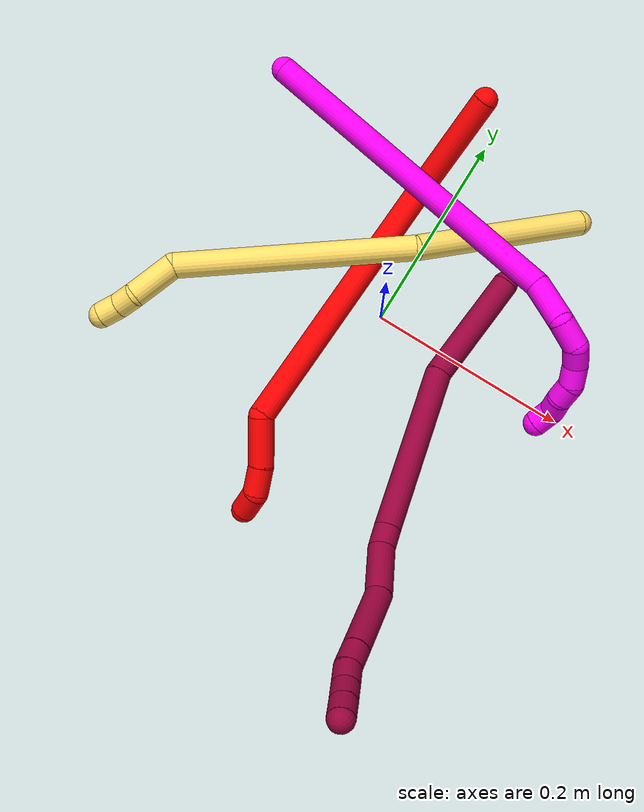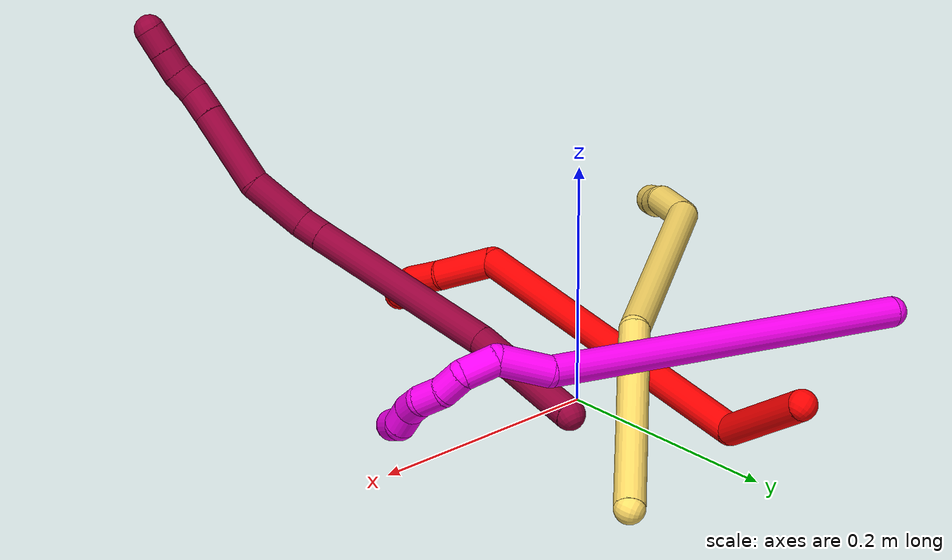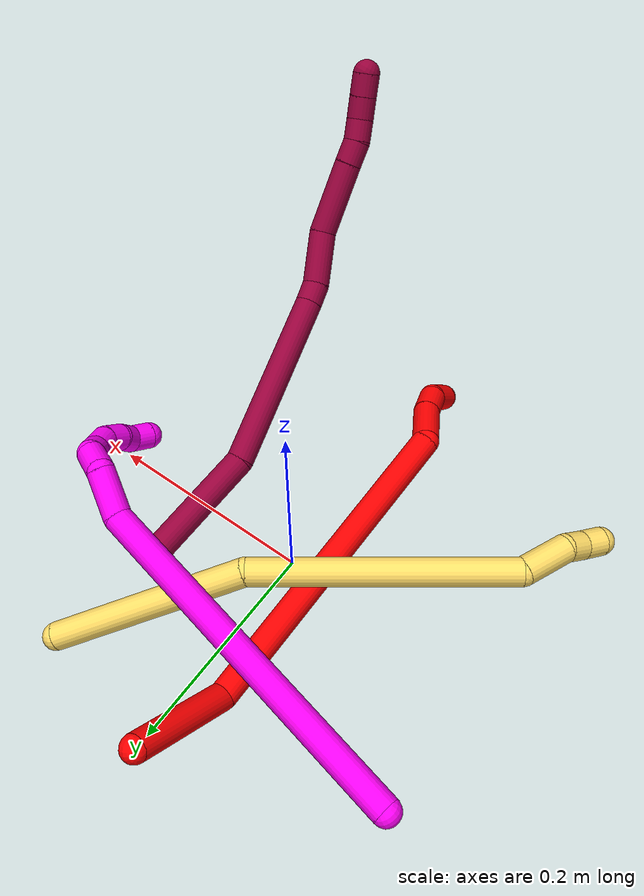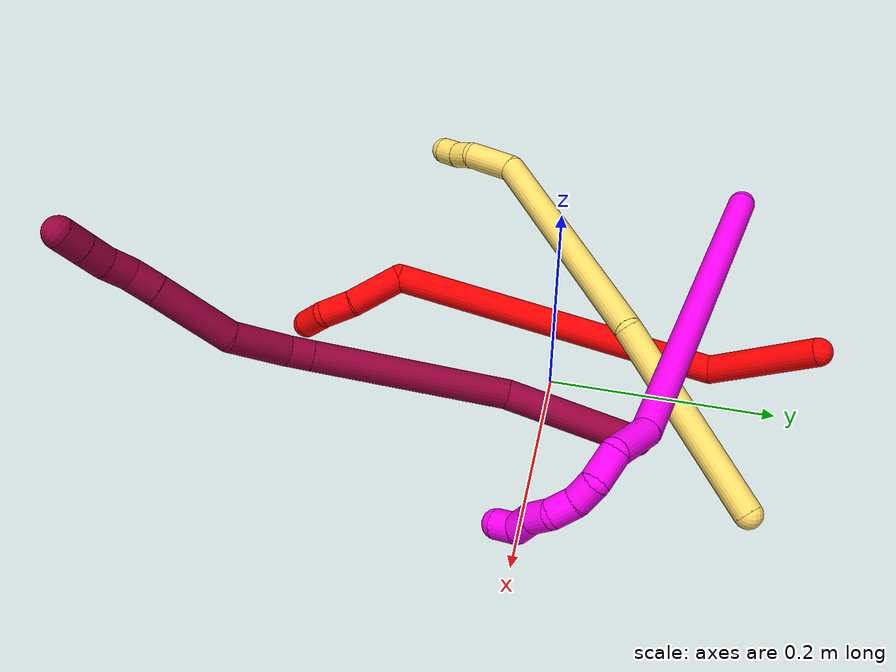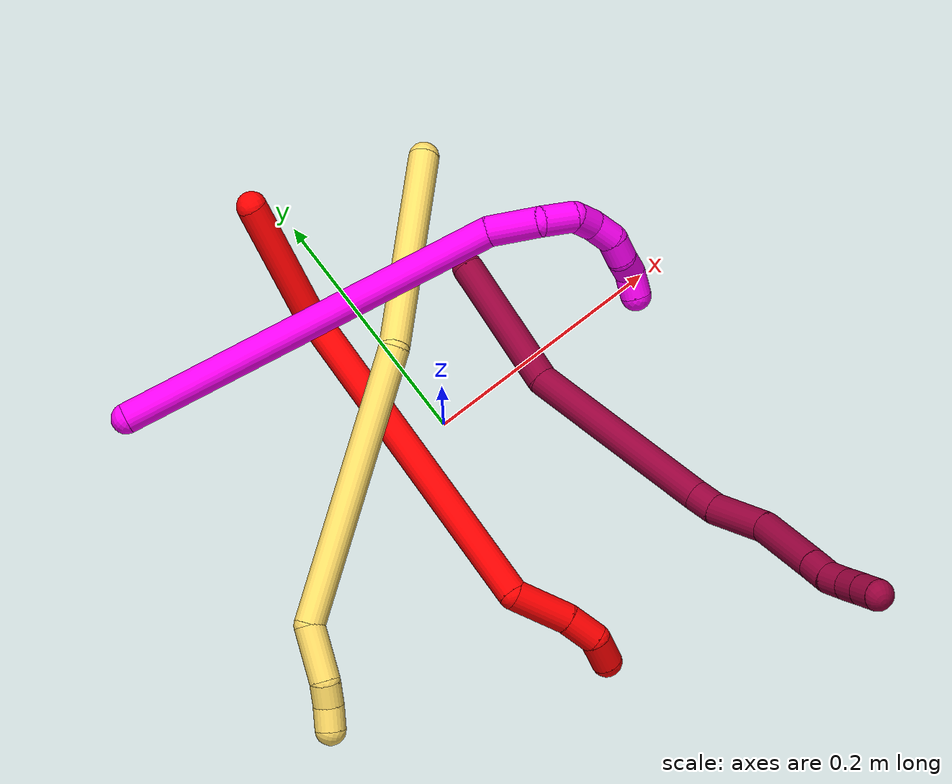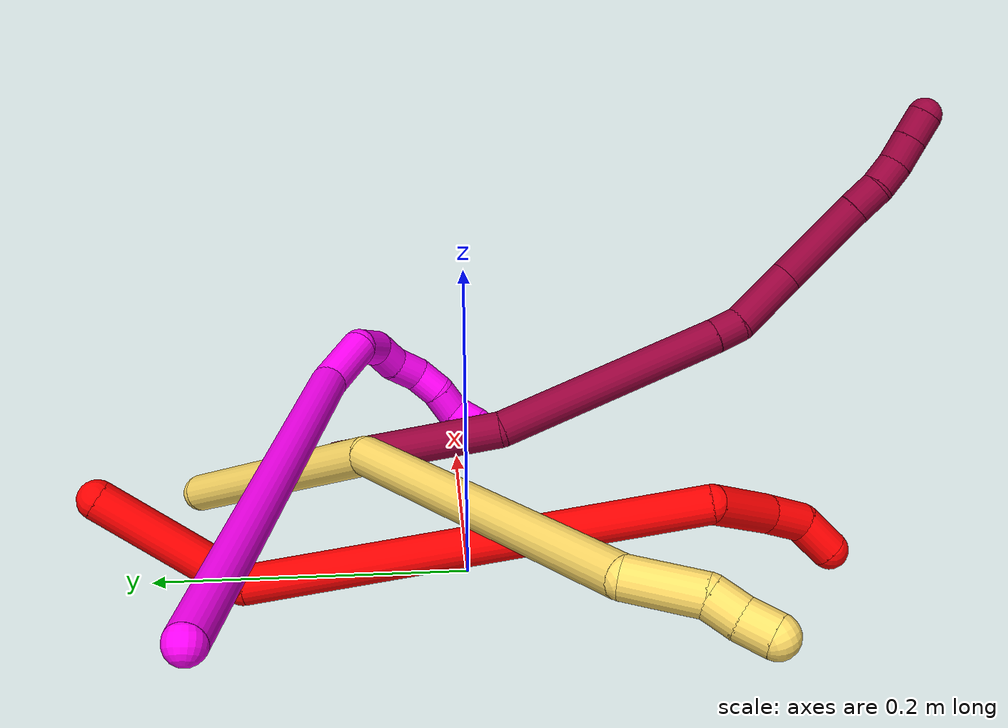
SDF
<sdf version="1.7">
 <world name="default">
  <model name="2">
   <static>0</static>
   <link name="2">
    <collision name="collision-cylinder-e_1_1_4">
     <pose>0.00624 -0.048665 0.015079 1.27032 0.12188 0.089882</pose>
     <geometry><cylinder><radius>0.0125</radius><length>0.102658</length></cylinder></geometry>
     <surface>
      <friction><ode><mu>1.16</mu><mu2>1.16</mu2><slip1>0</slip1><slip2>0</slip2></ode></friction>
      <contact><ode><kp>1e+06</kp><kd>1</kd><max_vel>0</max_vel><min_depth>0.001</min_depth></ode></contact>
     </surface>
    </collision>
    <visual name="visual-cylinder-e_1_1_4">
     <pose>0.00624 -0.048665 0.015079 1.27032 0.12188 0.089882</pose>
     <geometry><cylinder><radius>0.0125</radius><length>0.102658</length></cylinder></geometry>
     <material><ambient>1 0 0 1</ambient></material>
    </visual>
    <collision name="collision-cylinder-e_2_4_5">
     <pose>-0.053662 -0.225991 0.010615 1.72155 -0.470234 -0.543576</pose>
     <geometry><cylinder><radius>0.0125</radius><length>0.291962</length></cylinder></geometry>
     <surface>
      <friction><ode><mu>1.16</mu><mu2>1.16</mu2><slip1>0</slip1><slip2>0</slip2></ode></friction>
      <contact><ode><kp>1e+06</kp><kd>1</kd><max_vel>0</max_vel><min_depth>0.001</min_depth></ode></contact>
     </surface>
    </collision>
    <visual name="visual-cylinder-e_2_4_5">
     <pose>-0.053662 -0.225991 0.010615 1.72155 -0.470234 -0.543576</pose>
     <geometry><cylinder><radius>0.0125</radius><length>0.291962</length></cylinder></geometry>
     <material><ambient>1 0 0 1</ambient></material>
    </visual>
    <collision name="collision-cylinder-e_3_5_6">
     <pose>-0.128522 -0.372348 0.005869 0.874342 -0.361264 -0.170277</pose>
     <geometry><cylinder><radius>0.0125</radius><length>0.04932</length></cylinder></geometry>
     <surface>
      <friction><ode><mu>1.16</mu><mu2>1.16</mu2><slip1>0</slip1><slip2>0</slip2></ode></friction>
      <contact><ode><kp>1e+06</kp><kd>1</kd><max_vel>0</max_vel><min_depth>0.001</min_depth></ode></contact>
     </surface>
    </collision>
    <visual name="visual-cylinder-e_3_5_6">
     <pose>-0.128522 -0.372348 0.005869 0.874342 -0.361264 -0.170277</pose>
     <geometry><cylinder><radius>0.0125</radius><length>0.04932</length></cylinder></geometry>
     <material><ambient>1 0 0 1</ambient></material>
    </visual>
    <collision name="collision-cylinder-e_4_6_7">
     <pose>-0.141117 -0.402124 0.027643 1.04713 -0.271236 -0.157228</pose>
     <geometry><cylinder><radius>0.0125</radius><length>0.028958</length></cylinder></geometry>
     <surface>
      <friction><ode><mu>1.16</mu><mu2>1.16</mu2><slip1>0</slip1><slip2>0</slip2></ode></friction>
      <contact><ode><kp>1e+06</kp><kd>1</kd><max_vel>0</max_vel><min_depth>0.001</min_depth></ode></contact>
     </surface>
    </collision>
    <visual name="visual-cylinder-e_4_6_7">
     <pose>-0.141117 -0.402124 0.027643 1.04713 -0.271236 -0.157228</pose>
     <geometry><cylinder><radius>0.0125</radius><length>0.028958</length></cylinder></geometry>
     <material><ambient>1 0 0 1</ambient></material>
    </visual>
    <collision name="collision-cylinder-e_5_7_2">
     <pose>-0.141296 -0.425882 0.040413 1.11019 0.27656 0.17218</pose>
     <geometry><cylinder><radius>0.0125</radius><length>0.027103</length></cylinder></geometry>
     <surface>
      <friction><ode><mu>1.16</mu><mu2>1.16</mu2><slip1>0</slip1><slip2>0</slip2></ode></friction>
      <contact><ode><kp>1e+06</kp><kd>1</kd><max_vel>0</max_vel><min_depth>0.001</min_depth></ode></contact>
     </surface>
    </collision>
    <visual name="visual-cylinder-e_5_7_2">
     <pose>-0.141296 -0.425882 0.040413 1.11019 0.27656 0.17218</pose>
     <geometry><cylinder><radius>0.0125</radius><length>0.027103</length></cylinder></geometry>
     <material><ambient>1 0 0 1</ambient></material>
    </visual>
    <collision name="collision-sphere-2">
     <pose>-0.137596 -0.43756 0.046208 0 -0 0</pose>
     <geometry><sphere><radius>0.0125</radius></sphere></geometry>
     <surface>
      <friction><ode><mu>1.16</mu><mu2>1.16</mu2><slip1>0</slip1><slip2>0</slip2></ode></friction>
      <contact><ode><kp>1e+06</kp><kd>1</kd><max_vel>0</max_vel><min_depth>0.001</min_depth></ode></contact>
     </surface>
    </collision>
    <visual name="visual-sphere-2">
     <pose>-0.137596 -0.43756 0.046208 0 -0 0</pose>
     <geometry><sphere><radius>0.0125</radius></sphere></geometry>
     <material><ambient>1 0 0 1</ambient></material>
    </visual>
    <collision name="collision-sphere-7">
     <pose>-0.144996 -0.414204 0.034619 0 -0 0</pose>
     <geometry><sphere><radius>0.0125</radius></sphere></geometry>
     <surface>
      <friction><ode><mu>1.16</mu><mu2>1.16</mu2><slip1>0</slip1><slip2>0</slip2></ode></friction>
      <contact><ode><kp>1e+06</kp><kd>1</kd><max_vel>0</max_vel><min_depth>0.001</min_depth></ode></contact>
     </surface>
    </collision>
    <visual name="visual-sphere-7">
     <pose>-0.144996 -0.414204 0.034619 0 -0 0</pose>
     <geometry><sphere><radius>0.0125</radius></sphere></geometry>
     <material><ambient>1 0 0 1</ambient></material>
    </visual>
    <collision name="collision-sphere-6">
     <pose>-0.137238 -0.390044 0.020667 0 -0 0</pose>
     <geometry><sphere><radius>0.0125</radius></sphere></geometry>
     <surface>
      <friction><ode><mu>1.16</mu><mu2>1.16</mu2><slip1>0</slip1><slip2>0</slip2></ode></friction>
      <contact><ode><kp>1e+06</kp><kd>1</kd><max_vel>0</max_vel><min_depth>0.001</min_depth></ode></contact>
     </surface>
    </collision>
    <visual name="visual-sphere-6">
     <pose>-0.137238 -0.390044 0.020667 0 -0 0</pose>
     <geometry><sphere><radius>0.0125</radius></sphere></geometry>
     <material><ambient>1 0 0 1</ambient></material>
    </visual>
    <collision name="collision-sphere-5">
     <pose>-0.119805 -0.354652 -0.008929 0 -0 0</pose>
     <geometry><sphere><radius>0.0125</radius></sphere></geometry>
     <surface>
      <friction><ode><mu>1.16</mu><mu2>1.16</mu2><slip1>0</slip1><slip2>0</slip2></ode></friction>
      <contact><ode><kp>1e+06</kp><kd>1</kd><max_vel>0</max_vel><min_depth>0.001</min_depth></ode></contact>
     </surface>
    </collision>
    <visual name="visual-sphere-5">
     <pose>-0.119805 -0.354652 -0.008929 0 -0 0</pose>
     <geometry><sphere><radius>0.0125</radius></sphere></geometry>
     <material><ambient>1 0 0 1</ambient></material>
    </visual>
    <collision name="collision-sphere-1">
     <geometry><sphere><radius>0.0125</radius></sphere></geometry>
     <surface>
      <friction><ode><mu>1.16</mu><mu2>1.16</mu2><slip1>0</slip1><slip2>0</slip2></ode></friction>
      <contact><ode><kp>1e+06</kp><kd>1</kd><max_vel>0</max_vel><min_depth>0.001</min_depth></ode></contact>
     </surface>
    </collision>
    <visual name="visual-sphere-1">
     <geometry><sphere><radius>0.0125</radius></sphere></geometry>
     <material><ambient>1 0 0 1</ambient></material>
    </visual>
    <collision name="collision-sphere-4">
     <pose>0.012481 -0.097331 0.030159 0 -0 0</pose>
     <geometry><sphere><radius>0.0125</radius></sphere></geometry>
     <surface>
      <friction><ode><mu>1.16</mu><mu2>1.16</mu2><slip1>0</slip1><slip2>0</slip2></ode></friction>
      <contact><ode><kp>1e+06</kp><kd>1</kd><max_vel>0</max_vel><min_depth>0.001</min_depth></ode></contact>
     </surface>
    </collision>
    <visual name="visual-sphere-4">
     <pose>0.012481 -0.097331 0.030159 0 -0 0</pose>
     <geometry><sphere><radius>0.0125</radius></sphere></geometry>
     <material><ambient>1 0 0 1</ambient></material>
    </visual>
    <inertial>
     <pose>-0.058563 -0.225056 0.013665 0 -0 0</pose>
     <mass>0.5</mass>
     <inertia>
      <ixx>0.000735</ixx>
      <ixy>0</ixy>
      <ixz>0</ixz>
      <iyy>-0.000734</iyy>
      <iyz>0</iyz>
      <izz>0.002882</izz>
     </inertia>
    </inertial>
   </link>
   <pose>-0.021127 0.224883 0.067149 2.77171 0.743252 2.61111</pose>
  </model>
  <model name="5">
   <static>0</static>
   <link name="5">
    <collision name="collision-cylinder-e_1_1_4">
     <pose>-0.030023 -0.078042 -0.03745 2.0182 -0.333851 -0.523212</pose>
     <geometry><cylinder><radius>0.0125</radius><length>0.183242</length></cylinder></geometry>
     <surface>
      <friction><ode><mu>1.16</mu><mu2>1.16</mu2><slip1>0</slip1><slip2>0</slip2></ode></friction>
      <contact><ode><kp>1e+06</kp><kd>1</kd><max_vel>0</max_vel><min_depth>0.001</min_depth></ode></contact>
     </surface>
    </collision>
    <visual name="visual-cylinder-e_1_1_4">
     <pose>-0.030023 -0.078042 -0.03745 2.0182 -0.333851 -0.523212</pose>
     <geometry><cylinder><radius>0.0125</radius><length>0.183242</length></cylinder></geometry>
     <material><ambient>1 0.858824 0.4 1</ambient></material>
    </visual>
    <collision name="collision-cylinder-e_2_4_5">
     <pose>-0.135982 -0.240221 -0.09667 1.824 -0.718132 -0.90286</pose>
     <geometry><cylinder><radius>0.0125</radius><length>0.230818</length></cylinder></geometry>
     <surface>
      <friction><ode><mu>1.16</mu><mu2>1.16</mu2><slip1>0</slip1><slip2>0</slip2></ode></friction>
      <contact><ode><kp>1e+06</kp><kd>1</kd><max_vel>0</max_vel><min_depth>0.001</min_depth></ode></contact>
     </surface>
    </collision>
    <visual name="visual-cylinder-e_2_4_5">
     <pose>-0.135982 -0.240221 -0.09667 1.824 -0.718132 -0.90286</pose>
     <geometry><cylinder><radius>0.0125</radius><length>0.230818</length></cylinder></geometry>
     <material><ambient>1 0.858824 0.4 1</ambient></material>
    </visual>
    <collision name="collision-cylinder-e_3_5_6">
     <pose>-0.227185 -0.333228 -0.133061 2.59621 -0.728744 -1.87622</pose>
     <geometry><cylinder><radius>0.0125</radius><length>0.045848</length></cylinder></geometry>
     <surface>
      <friction><ode><mu>1.16</mu><mu2>1.16</mu2><slip1>0</slip1><slip2>0</slip2></ode></friction>
      <contact><ode><kp>1e+06</kp><kd>1</kd><max_vel>0</max_vel><min_depth>0.001</min_depth></ode></contact>
     </surface>
    </collision>
    <visual name="visual-cylinder-e_3_5_6">
     <pose>-0.227185 -0.333228 -0.133061 2.59621 -0.728744 -1.87622</pose>
     <geometry><cylinder><radius>0.0125</radius><length>0.045848</length></cylinder></geometry>
     <material><ambient>1 0.858824 0.4 1</ambient></material>
    </visual>
    <collision name="collision-cylinder-e_4_6_7">
     <pose>-0.251461 -0.34402 -0.151604 2.68631 -1.11948 -2.43335</pose>
     <geometry><cylinder><radius>0.0125</radius><length>0.020026</length></cylinder></geometry>
     <surface>
      <friction><ode><mu>1.16</mu><mu2>1.16</mu2><slip1>0</slip1><slip2>0</slip2></ode></friction>
      <contact><ode><kp>1e+06</kp><kd>1</kd><max_vel>0</max_vel><min_depth>0.001</min_depth></ode></contact>
     </surface>
    </collision>
    <visual name="visual-cylinder-e_4_6_7">
     <pose>-0.251461 -0.34402 -0.151604 2.68631 -1.11948 -2.43335</pose>
     <geometry><cylinder><radius>0.0125</radius><length>0.020026</length></cylinder></geometry>
     <material><ambient>1 0.858824 0.4 1</ambient></material>
    </visual>
    <collision name="collision-cylinder-e_5_7_2">
     <pose>-0.268724 -0.349716 -0.159805 2.41845 -0.965795 -1.89178</pose>
     <geometry><cylinder><radius>0.0125</radius><length>0.020066</length></cylinder></geometry>
     <surface>
      <friction><ode><mu>1.16</mu><mu2>1.16</mu2><slip1>0</slip1><slip2>0</slip2></ode></friction>
      <contact><ode><kp>1e+06</kp><kd>1</kd><max_vel>0</max_vel><min_depth>0.001</min_depth></ode></contact>
     </surface>
    </collision>
    <visual name="visual-cylinder-e_5_7_2">
     <pose>-0.268724 -0.349716 -0.159805 2.41845 -0.965795 -1.89178</pose>
     <geometry><cylinder><radius>0.0125</radius><length>0.020066</length></cylinder></geometry>
     <material><ambient>1 0.858824 0.4 1</ambient></material>
    </visual>
    <collision name="collision-sphere-2">
     <pose>-0.276976 -0.353492 -0.164083 0 -0 0</pose>
     <geometry><sphere><radius>0.0125</radius></sphere></geometry>
     <surface>
      <friction><ode><mu>1.16</mu><mu2>1.16</mu2><slip1>0</slip1><slip2>0</slip2></ode></friction>
      <contact><ode><kp>1e+06</kp><kd>1</kd><max_vel>0</max_vel><min_depth>0.001</min_depth></ode></contact>
     </surface>
    </collision>
    <visual name="visual-sphere-2">
     <pose>-0.276976 -0.353492 -0.164083 0 -0 0</pose>
     <geometry><sphere><radius>0.0125</radius></sphere></geometry>
     <material><ambient>1 0.858824 0.4 1</ambient></material>
    </visual>
    <collision name="collision-sphere-7">
     <pose>-0.260472 -0.34594 -0.155526 0 -0 0</pose>
     <geometry><sphere><radius>0.0125</radius></sphere></geometry>
     <surface>
      <friction><ode><mu>1.16</mu><mu2>1.16</mu2><slip1>0</slip1><slip2>0</slip2></ode></friction>
      <contact><ode><kp>1e+06</kp><kd>1</kd><max_vel>0</max_vel><min_depth>0.001</min_depth></ode></contact>
     </surface>
    </collision>
    <visual name="visual-sphere-7">
     <pose>-0.260472 -0.34594 -0.155526 0 -0 0</pose>
     <geometry><sphere><radius>0.0125</radius></sphere></geometry>
     <material><ambient>1 0.858824 0.4 1</ambient></material>
    </visual>
    <collision name="collision-sphere-6">
     <pose>-0.242451 -0.3421 -0.147682 0 -0 0</pose>
     <geometry><sphere><radius>0.0125</radius></sphere></geometry>
     <surface>
      <friction><ode><mu>1.16</mu><mu2>1.16</mu2><slip1>0</slip1><slip2>0</slip2></ode></friction>
      <contact><ode><kp>1e+06</kp><kd>1</kd><max_vel>0</max_vel><min_depth>0.001</min_depth></ode></contact>
     </surface>
    </collision>
    <visual name="visual-sphere-6">
     <pose>-0.242451 -0.3421 -0.147682 0 -0 0</pose>
     <geometry><sphere><radius>0.0125</radius></sphere></geometry>
     <material><ambient>1 0.858824 0.4 1</ambient></material>
    </visual>
    <collision name="collision-sphere-5">
     <pose>-0.211919 -0.324357 -0.118441 0 -0 0</pose>
     <geometry><sphere><radius>0.0125</radius></sphere></geometry>
     <surface>
      <friction><ode><mu>1.16</mu><mu2>1.16</mu2><slip1>0</slip1><slip2>0</slip2></ode></friction>
      <contact><ode><kp>1e+06</kp><kd>1</kd><max_vel>0</max_vel><min_depth>0.001</min_depth></ode></contact>
     </surface>
    </collision>
    <visual name="visual-sphere-5">
     <pose>-0.211919 -0.324357 -0.118441 0 -0 0</pose>
     <geometry><sphere><radius>0.0125</radius></sphere></geometry>
     <material><ambient>1 0.858824 0.4 1</ambient></material>
    </visual>
    <collision name="collision-sphere-1">
     <geometry><sphere><radius>0.0125</radius></sphere></geometry>
     <surface>
      <friction><ode><mu>1.16</mu><mu2>1.16</mu2><slip1>0</slip1><slip2>0</slip2></ode></friction>
      <contact><ode><kp>1e+06</kp><kd>1</kd><max_vel>0</max_vel><min_depth>0.001</min_depth></ode></contact>
     </surface>
    </collision>
    <visual name="visual-sphere-1">
     <geometry><sphere><radius>0.0125</radius></sphere></geometry>
     <material><ambient>1 0.858824 0.4 1</ambient></material>
    </visual>
    <collision name="collision-sphere-4">
     <pose>-0.060046 -0.156085 -0.074899 0 -0 0</pose>
     <geometry><sphere><radius>0.0125</radius></sphere></geometry>
     <surface>
      <friction><ode><mu>1.16</mu><mu2>1.16</mu2><slip1>0</slip1><slip2>0</slip2></ode></friction>
      <contact><ode><kp>1e+06</kp><kd>1</kd><max_vel>0</max_vel><min_depth>0.001</min_depth></ode></contact>
     </surface>
    </collision>
    <visual name="visual-sphere-4">
     <pose>-0.060046 -0.156085 -0.074899 0 -0 0</pose>
     <geometry><sphere><radius>0.0125</radius></sphere></geometry>
     <material><ambient>1 0.858824 0.4 1</ambient></material>
    </visual>
    <inertial>
     <pose>-0.115465 -0.197865 -0.083037 0 -0 0</pose>
     <mass>0.5</mass>
     <inertia>
      <ixx>1.8e-05</ixx>
      <ixy>0</ixy>
      <ixz>0</ixz>
      <iyy>-0.000646</iyy>
      <iyz>0</iyz>
      <izz>0.002048</izz>
     </inertia>
    </inertial>
   </link>
   <pose>0.118435 0.182121 0.011491 -1.9759 -0.839267 0.740874</pose>
  </model>
  <model name="8">
   <static>0</static>
   <link name="8">
    <collision name="collision-cylinder-e_1_1_4">
     <pose>-0.010541 -0.027799 0.048355 0.521753 -0.186787 -0.05</pose>
     <geometry><cylinder><radius>0.0125</radius><length>0.113528</length></cylinder></geometry>
     <surface>
      <friction><ode><mu>1.16</mu><mu2>1.16</mu2><slip1>0</slip1><slip2>0</slip2></ode></friction>
      <contact><ode><kp>1e+06</kp><kd>1</kd><max_vel>0</max_vel><min_depth>0.001</min_depth></ode></contact>
     </surface>
    </collision>
    <visual name="visual-cylinder-e_1_1_4">
     <pose>-0.010541 -0.027799 0.048355 0.521753 -0.186787 -0.05</pose>
     <geometry><cylinder><radius>0.0125</radius><length>0.113528</length></cylinder></geometry>
     <material><ambient>0.584314 0 0.227451 1</ambient></material>
    </visual>
    <collision name="collision-cylinder-e_2_4_5">
     <pose>-0.009808 -0.093341 0.168666 0.483077 0.13788 0.034017</pose>
     <geometry><cylinder><radius>0.0125</radius><length>0.164064</length></cylinder></geometry>
     <surface>
      <friction><ode><mu>1.16</mu><mu2>1.16</mu2><slip1>0</slip1><slip2>0</slip2></ode></friction>
      <contact><ode><kp>1e+06</kp><kd>1</kd><max_vel>0</max_vel><min_depth>0.001</min_depth></ode></contact>
     </surface>
    </collision>
    <visual name="visual-cylinder-e_2_4_5">
     <pose>-0.009808 -0.093341 0.168666 0.483077 0.13788 0.034017</pose>
     <geometry><cylinder><radius>0.0125</radius><length>0.164064</length></cylinder></geometry>
     <material><ambient>0.584314 0 0.227451 1</ambient></material>
    </visual>
    <collision name="collision-cylinder-e_3_5_6">
     <pose>0.003219 -0.135449 0.249614 0.451933 0.17354 0.039991</pose>
     <geometry><cylinder><radius>0.0125</radius><length>0.020295</length></cylinder></geometry>
     <surface>
      <friction><ode><mu>1.16</mu><mu2>1.16</mu2><slip1>0</slip1><slip2>0</slip2></ode></friction>
      <contact><ode><kp>1e+06</kp><kd>1</kd><max_vel>0</max_vel><min_depth>0.001</min_depth></ode></contact>
     </surface>
    </collision>
    <visual name="visual-cylinder-e_3_5_6">
     <pose>0.003219 -0.135449 0.249614 0.451933 0.17354 0.039991</pose>
     <geometry><cylinder><radius>0.0125</radius><length>0.020295</length></cylinder></geometry>
     <material><ambient>0.584314 0 0.227451 1</ambient></material>
    </visual>
    <collision name="collision-cylinder-e_4_6_7">
     <pose>0.014711 -0.145023 0.28118 0.226787 0.397948 0.045919</pose>
     <geometry><cylinder><radius>0.0125</radius><length>0.050264</length></cylinder></geometry>
     <surface>
      <friction><ode><mu>1.16</mu><mu2>1.16</mu2><slip1>0</slip1><slip2>0</slip2></ode></friction>
      <contact><ode><kp>1e+06</kp><kd>1</kd><max_vel>0</max_vel><min_depth>0.001</min_depth></ode></contact>
     </surface>
    </collision>
    <visual name="visual-cylinder-e_4_6_7">
     <pose>0.014711 -0.145023 0.28118 0.226787 0.397948 0.045919</pose>
     <geometry><cylinder><radius>0.0125</radius><length>0.050264</length></cylinder></geometry>
     <material><ambient>0.584314 0 0.227451 1</ambient></material>
    </visual>
    <collision name="collision-cylinder-e_5_7_8">
     <pose>0.029548 -0.150888 0.337233 0.019586 0.151087 0.001482</pose>
     <geometry><cylinder><radius>0.0125</radius><length>0.067739</length></cylinder></geometry>
     <surface>
      <friction><ode><mu>1.16</mu><mu2>1.16</mu2><slip1>0</slip1><slip2>0</slip2></ode></friction>
      <contact><ode><kp>1e+06</kp><kd>1</kd><max_vel>0</max_vel><min_depth>0.001</min_depth></ode></contact>
     </surface>
    </collision>
    <visual name="visual-cylinder-e_5_7_8">
     <pose>0.029548 -0.150888 0.337233 0.019586 0.151087 0.001482</pose>
     <geometry><cylinder><radius>0.0125</radius><length>0.067739</length></cylinder></geometry>
     <material><ambient>0.584314 0 0.227451 1</ambient></material>
    </visual>
    <collision name="collision-cylinder-e_6_8_9">
     <pose>0.036122 -0.152124 0.381643 0.053045 0.133979 0.00356</pose>
     <geometry><cylinder><radius>0.0125</radius><length>0.022096</length></cylinder></geometry>
     <surface>
      <friction><ode><mu>1.16</mu><mu2>1.16</mu2><slip1>0</slip1><slip2>0</slip2></ode></friction>
      <contact><ode><kp>1e+06</kp><kd>1</kd><max_vel>0</max_vel><min_depth>0.001</min_depth></ode></contact>
     </surface>
    </collision>
    <visual name="visual-cylinder-e_6_8_9">
     <pose>0.036122 -0.152124 0.381643 0.053045 0.133979 0.00356</pose>
     <geometry><cylinder><radius>0.0125</radius><length>0.022096</length></cylinder></geometry>
     <material><ambient>0.584314 0 0.227451 1</ambient></material>
    </visual>
    <collision name="collision-cylinder-e_7_9_10">
     <pose>0.041275 -0.15308 0.402097 0.039419 0.368397 0.007345</pose>
     <geometry><cylinder><radius>0.0125</radius><length>0.020426</length></cylinder></geometry>
     <surface>
      <friction><ode><mu>1.16</mu><mu2>1.16</mu2><slip1>0</slip1><slip2>0</slip2></ode></friction>
      <contact><ode><kp>1e+06</kp><kd>1</kd><max_vel>0</max_vel><min_depth>0.001</min_depth></ode></contact>
     </surface>
    </collision>
    <visual name="visual-cylinder-e_7_9_10">
     <pose>0.041275 -0.15308 0.402097 0.039419 0.368397 0.007345</pose>
     <geometry><cylinder><radius>0.0125</radius><length>0.020426</length></cylinder></geometry>
     <material><ambient>0.584314 0 0.227451 1</ambient></material>
    </visual>
    <collision name="collision-cylinder-e_8_10_11">
     <pose>0.048557 -0.152058 0.421268 -0.143817 0.354037 -0.025771</pose>
     <geometry><cylinder><radius>0.0125</radius><length>0.020791</length></cylinder></geometry>
     <surface>
      <friction><ode><mu>1.16</mu><mu2>1.16</mu2><slip1>0</slip1><slip2>0</slip2></ode></friction>
      <contact><ode><kp>1e+06</kp><kd>1</kd><max_vel>0</max_vel><min_depth>0.001</min_depth></ode></contact>
     </surface>
    </collision>
    <visual name="visual-cylinder-e_8_10_11">
     <pose>0.048557 -0.152058 0.421268 -0.143817 0.354037 -0.025771</pose>
     <geometry><cylinder><radius>0.0125</radius><length>0.020791</length></cylinder></geometry>
     <material><ambient>0.584314 0 0.227451 1</ambient></material>
    </visual>
    <collision name="collision-cylinder-e_9_11_2">
     <pose>0.05567 -0.149306 0.440612 -0.138804 0.344162 -0.024162</pose>
     <geometry><cylinder><radius>0.0125</radius><length>0.020797</length></cylinder></geometry>
     <surface>
      <friction><ode><mu>1.16</mu><mu2>1.16</mu2><slip1>0</slip1><slip2>0</slip2></ode></friction>
      <contact><ode><kp>1e+06</kp><kd>1</kd><max_vel>0</max_vel><min_depth>0.001</min_depth></ode></contact>
     </surface>
    </collision>
    <visual name="visual-cylinder-e_9_11_2">
     <pose>0.05567 -0.149306 0.440612 -0.138804 0.344162 -0.024162</pose>
     <geometry><cylinder><radius>0.0125</radius><length>0.020797</length></cylinder></geometry>
     <material><ambient>0.584314 0 0.227451 1</ambient></material>
    </visual>
    <collision name="collision-sphere-2">
     <pose>0.059178 -0.147952 0.450307 0 -0 0</pose>
     <geometry><sphere><radius>0.0125</radius></sphere></geometry>
     <surface>
      <friction><ode><mu>1.16</mu><mu2>1.16</mu2><slip1>0</slip1><slip2>0</slip2></ode></friction>
      <contact><ode><kp>1e+06</kp><kd>1</kd><max_vel>0</max_vel><min_depth>0.001</min_depth></ode></contact>
     </surface>
    </collision>
    <visual name="visual-sphere-2">
     <pose>0.059178 -0.147952 0.450307 0 -0 0</pose>
     <geometry><sphere><radius>0.0125</radius></sphere></geometry>
     <material><ambient>0.584314 0 0.227451 1</ambient></material>
    </visual>
    <collision name="collision-sphere-11">
     <pose>0.052161 -0.150661 0.430918 0 -0 0</pose>
     <geometry><sphere><radius>0.0125</radius></sphere></geometry>
     <surface>
      <friction><ode><mu>1.16</mu><mu2>1.16</mu2><slip1>0</slip1><slip2>0</slip2></ode></friction>
      <contact><ode><kp>1e+06</kp><kd>1</kd><max_vel>0</max_vel><min_depth>0.001</min_depth></ode></contact>
     </surface>
    </collision>
    <visual name="visual-sphere-11">
     <pose>0.052161 -0.150661 0.430918 0 -0 0</pose>
     <geometry><sphere><radius>0.0125</radius></sphere></geometry>
     <material><ambient>0.584314 0 0.227451 1</ambient></material>
    </visual>
    <collision name="collision-sphere-10">
     <pose>0.044953 -0.153456 0.411618 0 -0 0</pose>
     <geometry><sphere><radius>0.0125</radius></sphere></geometry>
     <surface>
      <friction><ode><mu>1.16</mu><mu2>1.16</mu2><slip1>0</slip1><slip2>0</slip2></ode></friction>
      <contact><ode><kp>1e+06</kp><kd>1</kd><max_vel>0</max_vel><min_depth>0.001</min_depth></ode></contact>
     </surface>
    </collision>
    <visual name="visual-sphere-10">
     <pose>0.044953 -0.153456 0.411618 0 -0 0</pose>
     <geometry><sphere><radius>0.0125</radius></sphere></geometry>
     <material><ambient>0.584314 0 0.227451 1</ambient></material>
    </visual>
    <collision name="collision-sphere-9">
     <pose>0.037597 -0.152705 0.392577 0 -0 0</pose>
     <geometry><sphere><radius>0.0125</radius></sphere></geometry>
     <surface>
      <friction><ode><mu>1.16</mu><mu2>1.16</mu2><slip1>0</slip1><slip2>0</slip2></ode></friction>
      <contact><ode><kp>1e+06</kp><kd>1</kd><max_vel>0</max_vel><min_depth>0.001</min_depth></ode></contact>
     </surface>
    </collision>
    <visual name="visual-sphere-9">
     <pose>0.037597 -0.152705 0.392577 0 -0 0</pose>
     <geometry><sphere><radius>0.0125</radius></sphere></geometry>
     <material><ambient>0.584314 0 0.227451 1</ambient></material>
    </visual>
    <collision name="collision-sphere-4">
     <pose>-0.021082 -0.055598 0.09671 0 -0 0</pose>
     <geometry><sphere><radius>0.0125</radius></sphere></geometry>
     <surface>
      <friction><ode><mu>1.16</mu><mu2>1.16</mu2><slip1>0</slip1><slip2>0</slip2></ode></friction>
      <contact><ode><kp>1e+06</kp><kd>1</kd><max_vel>0</max_vel><min_depth>0.001</min_depth></ode></contact>
     </surface>
    </collision>
    <visual name="visual-sphere-4">
     <pose>-0.021082 -0.055598 0.09671 0 -0 0</pose>
     <geometry><sphere><radius>0.0125</radius></sphere></geometry>
     <material><ambient>0.584314 0 0.227451 1</ambient></material>
    </visual>
    <collision name="collision-sphere-1">
     <geometry><sphere><radius>0.0125</radius></sphere></geometry>
     <surface>
      <friction><ode><mu>1.16</mu><mu2>1.16</mu2><slip1>0</slip1><slip2>0</slip2></ode></friction>
      <contact><ode><kp>1e+06</kp><kd>1</kd><max_vel>0</max_vel><min_depth>0.001</min_depth></ode></contact>
     </surface>
    </collision>
    <visual name="visual-sphere-1">
     <geometry><sphere><radius>0.0125</radius></sphere></geometry>
     <material><ambient>0.584314 0 0.227451 1</ambient></material>
    </visual>
    <collision name="collision-sphere-8">
     <pose>0.034646 -0.151544 0.37071 0 -0 0</pose>
     <geometry><sphere><radius>0.0125</radius></sphere></geometry>
     <surface>
      <friction><ode><mu>1.16</mu><mu2>1.16</mu2><slip1>0</slip1><slip2>0</slip2></ode></friction>
      <contact><ode><kp>1e+06</kp><kd>1</kd><max_vel>0</max_vel><min_depth>0.001</min_depth></ode></contact>
     </surface>
    </collision>
    <visual name="visual-sphere-8">
     <pose>0.034646 -0.151544 0.37071 0 -0 0</pose>
     <geometry><sphere><radius>0.0125</radius></sphere></geometry>
     <material><ambient>0.584314 0 0.227451 1</ambient></material>
    </visual>
    <collision name="collision-sphere-5">
     <pose>0.001467 -0.131084 0.240622 0 -0 0</pose>
     <geometry><sphere><radius>0.0125</radius></sphere></geometry>
     <surface>
      <friction><ode><mu>1.16</mu><mu2>1.16</mu2><slip1>0</slip1><slip2>0</slip2></ode></friction>
      <contact><ode><kp>1e+06</kp><kd>1</kd><max_vel>0</max_vel><min_depth>0.001</min_depth></ode></contact>
     </surface>
    </collision>
    <visual name="visual-sphere-5">
     <pose>0.001467 -0.131084 0.240622 0 -0 0</pose>
     <geometry><sphere><radius>0.0125</radius></sphere></geometry>
     <material><ambient>0.584314 0 0.227451 1</ambient></material>
    </visual>
    <collision name="collision-sphere-6">
     <pose>0.004972 -0.139814 0.258606 0 -0 0</pose>
     <geometry><sphere><radius>0.0125</radius></sphere></geometry>
     <surface>
      <friction><ode><mu>1.16</mu><mu2>1.16</mu2><slip1>0</slip1><slip2>0</slip2></ode></friction>
      <contact><ode><kp>1e+06</kp><kd>1</kd><max_vel>0</max_vel><min_depth>0.001</min_depth></ode></contact>
     </surface>
    </collision>
    <visual name="visual-sphere-6">
     <pose>0.004972 -0.139814 0.258606 0 -0 0</pose>
     <geometry><sphere><radius>0.0125</radius></sphere></geometry>
     <material><ambient>0.584314 0 0.227451 1</ambient></material>
    </visual>
    <collision name="collision-sphere-7">
     <pose>0.02445 -0.150232 0.303755 0 -0 0</pose>
     <geometry><sphere><radius>0.0125</radius></sphere></geometry>
     <surface>
      <friction><ode><mu>1.16</mu><mu2>1.16</mu2><slip1>0</slip1><slip2>0</slip2></ode></friction>
      <contact><ode><kp>1e+06</kp><kd>1</kd><max_vel>0</max_vel><min_depth>0.001</min_depth></ode></contact>
     </surface>
    </collision>
    <visual name="visual-sphere-7">
     <pose>0.02445 -0.150232 0.303755 0 -0 0</pose>
     <geometry><sphere><radius>0.0125</radius></sphere></geometry>
     <material><ambient>0.584314 0 0.227451 1</ambient></material>
    </visual>
    <inertial>
     <pose>0.007618 -0.102968 0.219545 0 -0 0</pose>
     <mass>0.5</mass>
     <inertia>
      <ixx>0.000554</ixx>
      <ixy>0</ixy>
      <ixz>0</ixz>
      <iyy>0.000486</iyy>
      <iyz>0</iyz>
      <izz>0.000234</izz>
     </inertia>
    </inertial>
   </link>
   <pose>0.088022 0.083942 0.045087 0.793141 -0.259652 0.162604</pose>
  </model>
  <model name="10">
   <static>0</static>
   <link name="10">
    <collision name="collision-cylinder-e_1_1_4">
     <pose>0.119036 -0.01946 0.108276 0.177827 0.824783 0.077961</pose>
     <geometry><cylinder><radius>0.0125</radius><length>0.324172</length></cylinder></geometry>
     <surface>
      <friction><ode><mu>1.16</mu><mu2>1.16</mu2><slip1>0</slip1><slip2>0</slip2></ode></friction>
      <contact><ode><kp>1e+06</kp><kd>1</kd><max_vel>0</max_vel><min_depth>0.001</min_depth></ode></contact>
     </surface>
    </collision>
    <visual name="visual-cylinder-e_1_1_4">
     <pose>0.119036 -0.01946 0.108276 0.177827 0.824783 0.077961</pose>
     <geometry><cylinder><radius>0.0125</radius><length>0.324172</length></cylinder></geometry>
     <material><ambient>1 0 0.964706 1</ambient></material>
    </visual>
    <collision name="collision-cylinder-e_2_4_5">
     <pose>0.248485 -0.048134 0.233495 0.498066 0.495028 0.12835</pose>
     <geometry><cylinder><radius>0.0125</radius><length>0.043837</length></cylinder></geometry>
     <surface>
      <friction><ode><mu>1.16</mu><mu2>1.16</mu2><slip1>0</slip1><slip2>0</slip2></ode></friction>
      <contact><ode><kp>1e+06</kp><kd>1</kd><max_vel>0</max_vel><min_depth>0.001</min_depth></ode></contact>
     </surface>
    </collision>
    <visual name="visual-cylinder-e_2_4_5">
     <pose>0.248485 -0.048134 0.233495 0.498066 0.495028 0.12835</pose>
     <geometry><cylinder><radius>0.0125</radius><length>0.043837</length></cylinder></geometry>
     <material><ambient>1 0 0.964706 1</ambient></material>
    </visual>
    <collision name="collision-cylinder-e_3_5_6">
     <pose>0.271621 -0.062332 0.254464 0.891518 1.10434 0.572609</pose>
     <geometry><cylinder><radius>0.0125</radius><length>0.028491</length></cylinder></geometry>
     <surface>
      <friction><ode><mu>1.16</mu><mu2>1.16</mu2><slip1>0</slip1><slip2>0</slip2></ode></friction>
      <contact><ode><kp>1e+06</kp><kd>1</kd><max_vel>0</max_vel><min_depth>0.001</min_depth></ode></contact>
     </surface>
    </collision>
    <visual name="visual-cylinder-e_3_5_6">
     <pose>0.271621 -0.062332 0.254464 0.891518 1.10434 0.572609</pose>
     <geometry><cylinder><radius>0.0125</radius><length>0.028491</length></cylinder></geometry>
     <material><ambient>1 0 0.964706 1</ambient></material>
    </visual>
    <collision name="collision-cylinder-e_4_6_7">
     <pose>0.292881 -0.072985 0.255496 2.05658 0.926762 1.38418</pose>
     <geometry><cylinder><radius>0.0125</radius><length>0.02135</length></cylinder></geometry>
     <surface>
      <friction><ode><mu>1.16</mu><mu2>1.16</mu2><slip1>0</slip1><slip2>0</slip2></ode></friction>
      <contact><ode><kp>1e+06</kp><kd>1</kd><max_vel>0</max_vel><min_depth>0.001</min_depth></ode></contact>
     </surface>
    </collision>
    <visual name="visual-cylinder-e_4_6_7">
     <pose>0.292881 -0.072985 0.255496 2.05658 0.926762 1.38418</pose>
     <geometry><cylinder><radius>0.0125</radius><length>0.02135</length></cylinder></geometry>
     <material><ambient>1 0 0.964706 1</ambient></material>
    </visual>
    <collision name="collision-cylinder-e_5_7_8">
     <pose>0.308164 -0.087059 0.250482 1.80685 0.662659 0.823257</pose>
     <geometry><cylinder><radius>0.0125</radius><length>0.021933</length></cylinder></geometry>
     <surface>
      <friction><ode><mu>1.16</mu><mu2>1.16</mu2><slip1>0</slip1><slip2>0</slip2></ode></friction>
      <contact><ode><kp>1e+06</kp><kd>1</kd><max_vel>0</max_vel><min_depth>0.001</min_depth></ode></contact>
     </surface>
    </collision>
    <visual name="visual-cylinder-e_5_7_8">
     <pose>0.308164 -0.087059 0.250482 1.80685 0.662659 0.823257</pose>
     <geometry><cylinder><radius>0.0125</radius><length>0.021933</length></cylinder></geometry>
     <material><ambient>1 0 0.964706 1</ambient></material>
    </visual>
    <collision name="collision-cylinder-e_6_8_9">
     <pose>0.318442 -0.10315 0.242954 2.19246 0.357414 0.67623</pose>
     <geometry><cylinder><radius>0.0125</radius><length>0.020184</length></cylinder></geometry>
     <surface>
      <friction><ode><mu>1.16</mu><mu2>1.16</mu2><slip1>0</slip1><slip2>0</slip2></ode></friction>
      <contact><ode><kp>1e+06</kp><kd>1</kd><max_vel>0</max_vel><min_depth>0.001</min_depth></ode></contact>
     </surface>
    </collision>
    <visual name="visual-cylinder-e_6_8_9">
     <pose>0.318442 -0.10315 0.242954 2.19246 0.357414 0.67623</pose>
     <geometry><cylinder><radius>0.0125</radius><length>0.020184</length></cylinder></geometry>
     <material><ambient>1 0 0.964706 1</ambient></material>
    </visual>
    <collision name="collision-cylinder-e_7_9_10">
     <pose>0.327526 -0.116341 0.23121 2.41854 0.588622 1.35141</pose>
     <geometry><cylinder><radius>0.0125</radius><length>0.020006</length></cylinder></geometry>
     <surface>
      <friction><ode><mu>1.16</mu><mu2>1.16</mu2><slip1>0</slip1><slip2>0</slip2></ode></friction>
      <contact><ode><kp>1e+06</kp><kd>1</kd><max_vel>0</max_vel><min_depth>0.001</min_depth></ode></contact>
     </surface>
    </collision>
    <visual name="visual-cylinder-e_7_9_10">
     <pose>0.327526 -0.116341 0.23121 2.41854 0.588622 1.35141</pose>
     <geometry><cylinder><radius>0.0125</radius><length>0.020006</length></cylinder></geometry>
     <material><ambient>1 0 0.964706 1</ambient></material>
    </visual>
    <collision name="collision-cylinder-e_8_10_2">
     <pose>0.333381 -0.130525 0.219987 2.09208 0.029982 0.051784</pose>
     <geometry><cylinder><radius>0.0125</radius><length>0.020026</length></cylinder></geometry>
     <surface>
      <friction><ode><mu>1.16</mu><mu2>1.16</mu2><slip1>0</slip1><slip2>0</slip2></ode></friction>
      <contact><ode><kp>1e+06</kp><kd>1</kd><max_vel>0</max_vel><min_depth>0.001</min_depth></ode></contact>
     </surface>
    </collision>
    <visual name="visual-cylinder-e_8_10_2">
     <pose>0.333381 -0.130525 0.219987 2.09208 0.029982 0.051784</pose>
     <geometry><cylinder><radius>0.0125</radius><length>0.020026</length></cylinder></geometry>
     <material><ambient>1 0 0.964706 1</ambient></material>
    </visual>
    <collision name="collision-sphere-2">
     <pose>0.333681 -0.139204 0.215003 0 -0 0</pose>
     <geometry><sphere><radius>0.0125</radius></sphere></geometry>
     <surface>
      <friction><ode><mu>1.16</mu><mu2>1.16</mu2><slip1>0</slip1><slip2>0</slip2></ode></friction>
      <contact><ode><kp>1e+06</kp><kd>1</kd><max_vel>0</max_vel><min_depth>0.001</min_depth></ode></contact>
     </surface>
    </collision>
    <visual name="visual-sphere-2">
     <pose>0.333681 -0.139204 0.215003 0 -0 0</pose>
     <geometry><sphere><radius>0.0125</radius></sphere></geometry>
     <material><ambient>1 0 0.964706 1</ambient></material>
    </visual>
    <collision name="collision-sphere-10">
     <pose>0.33308 -0.121846 0.224972 0 -0 0</pose>
     <geometry><sphere><radius>0.0125</radius></sphere></geometry>
     <surface>
      <friction><ode><mu>1.16</mu><mu2>1.16</mu2><slip1>0</slip1><slip2>0</slip2></ode></friction>
      <contact><ode><kp>1e+06</kp><kd>1</kd><max_vel>0</max_vel><min_depth>0.001</min_depth></ode></contact>
     </surface>
    </collision>
    <visual name="visual-sphere-10">
     <pose>0.33308 -0.121846 0.224972 0 -0 0</pose>
     <geometry><sphere><radius>0.0125</radius></sphere></geometry>
     <material><ambient>1 0 0.964706 1</ambient></material>
    </visual>
    <collision name="collision-sphere-9">
     <pose>0.321973 -0.110836 0.237448 0 -0 0</pose>
     <geometry><sphere><radius>0.0125</radius></sphere></geometry>
     <surface>
      <friction><ode><mu>1.16</mu><mu2>1.16</mu2><slip1>0</slip1><slip2>0</slip2></ode></friction>
      <contact><ode><kp>1e+06</kp><kd>1</kd><max_vel>0</max_vel><min_depth>0.001</min_depth></ode></contact>
     </surface>
    </collision>
    <visual name="visual-sphere-9">
     <pose>0.321973 -0.110836 0.237448 0 -0 0</pose>
     <geometry><sphere><radius>0.0125</radius></sphere></geometry>
     <material><ambient>1 0 0.964706 1</ambient></material>
    </visual>
    <collision name="collision-sphere-4">
     <pose>0.238072 -0.03892 0.216551 0 -0 0</pose>
     <geometry><sphere><radius>0.0125</radius></sphere></geometry>
     <surface>
      <friction><ode><mu>1.16</mu><mu2>1.16</mu2><slip1>0</slip1><slip2>0</slip2></ode></friction>
      <contact><ode><kp>1e+06</kp><kd>1</kd><max_vel>0</max_vel><min_depth>0.001</min_depth></ode></contact>
     </surface>
    </collision>
    <visual name="visual-sphere-4">
     <pose>0.238072 -0.03892 0.216551 0 -0 0</pose>
     <geometry><sphere><radius>0.0125</radius></sphere></geometry>
     <material><ambient>1 0 0.964706 1</ambient></material>
    </visual>
    <collision name="collision-sphere-1">
     <geometry><sphere><radius>0.0125</radius></sphere></geometry>
     <surface>
      <friction><ode><mu>1.16</mu><mu2>1.16</mu2><slip1>0</slip1><slip2>0</slip2></ode></friction>
      <contact><ode><kp>1e+06</kp><kd>1</kd><max_vel>0</max_vel><min_depth>0.001</min_depth></ode></contact>
     </surface>
    </collision>
    <visual name="visual-sphere-1">
     <geometry><sphere><radius>0.0125</radius></sphere></geometry>
     <material><ambient>1 0 0.964706 1</ambient></material>
    </visual>
    <collision name="collision-sphere-8">
     <pose>0.314911 -0.095465 0.24846 0 -0 0</pose>
     <geometry><sphere><radius>0.0125</radius></sphere></geometry>
     <surface>
      <friction><ode><mu>1.16</mu><mu2>1.16</mu2><slip1>0</slip1><slip2>0</slip2></ode></friction>
      <contact><ode><kp>1e+06</kp><kd>1</kd><max_vel>0</max_vel><min_depth>0.001</min_depth></ode></contact>
     </surface>
    </collision>
    <visual name="visual-sphere-8">
     <pose>0.314911 -0.095465 0.24846 0 -0 0</pose>
     <geometry><sphere><radius>0.0125</radius></sphere></geometry>
     <material><ambient>1 0 0.964706 1</ambient></material>
    </visual>
    <collision name="collision-sphere-5">
     <pose>0.258897 -0.057348 0.25044 0 -0 0</pose>
     <geometry><sphere><radius>0.0125</radius></sphere></geometry>
     <surface>
      <friction><ode><mu>1.16</mu><mu2>1.16</mu2><slip1>0</slip1><slip2>0</slip2></ode></friction>
      <contact><ode><kp>1e+06</kp><kd>1</kd><max_vel>0</max_vel><min_depth>0.001</min_depth></ode></contact>
     </surface>
    </collision>
    <visual name="visual-sphere-5">
     <pose>0.258897 -0.057348 0.25044 0 -0 0</pose>
     <geometry><sphere><radius>0.0125</radius></sphere></geometry>
     <material><ambient>1 0 0.964706 1</ambient></material>
    </visual>
    <collision name="collision-sphere-6">
     <pose>0.284344 -0.067317 0.258489 0 -0 0</pose>
     <geometry><sphere><radius>0.0125</radius></sphere></geometry>
     <surface>
      <friction><ode><mu>1.16</mu><mu2>1.16</mu2><slip1>0</slip1><slip2>0</slip2></ode></friction>
      <contact><ode><kp>1e+06</kp><kd>1</kd><max_vel>0</max_vel><min_depth>0.001</min_depth></ode></contact>
     </surface>
    </collision>
    <visual name="visual-sphere-6">
     <pose>0.284344 -0.067317 0.258489 0 -0 0</pose>
     <geometry><sphere><radius>0.0125</radius></sphere></geometry>
     <material><ambient>1 0 0.964706 1</ambient></material>
    </visual>
    <collision name="collision-sphere-7">
     <pose>0.301417 -0.078653 0.252504 0 -0 0</pose>
     <geometry><sphere><radius>0.0125</radius></sphere></geometry>
     <surface>
      <friction><ode><mu>1.16</mu><mu2>1.16</mu2><slip1>0</slip1><slip2>0</slip2></ode></friction>
      <contact><ode><kp>1e+06</kp><kd>1</kd><max_vel>0</max_vel><min_depth>0.001</min_depth></ode></contact>
     </surface>
    </collision>
    <visual name="visual-sphere-7">
     <pose>0.301417 -0.078653 0.252504 0 -0 0</pose>
     <geometry><sphere><radius>0.0125</radius></sphere></geometry>
     <material><ambient>1 0 0.964706 1</ambient></material>
    </visual>
    <inertial>
     <pose>0.179776 -0.041371 0.154939 0 -0 0</pose>
     <mass>0.5</mass>
     <inertia>
      <ixx>0.002125</ixx>
      <ixy>0</ixy>
      <ixz>0</ixz>
      <iyy>0.002984</iyy>
      <iyz>0</iyz>
      <izz>-0.001736</izz>
     </inertia>
    </inertial>
   </link>
   <pose>-0.203131 0.149416 0.064805 0.001946 0.653927 -0.062255</pose>
  </model>
 </world>
</sdf>
